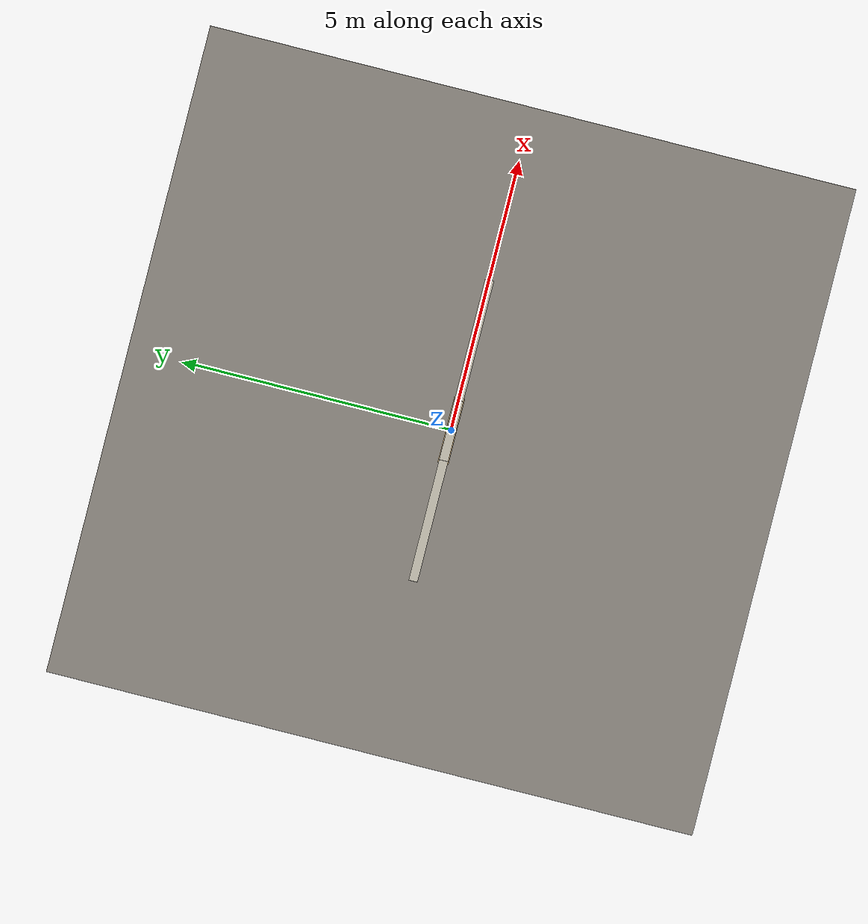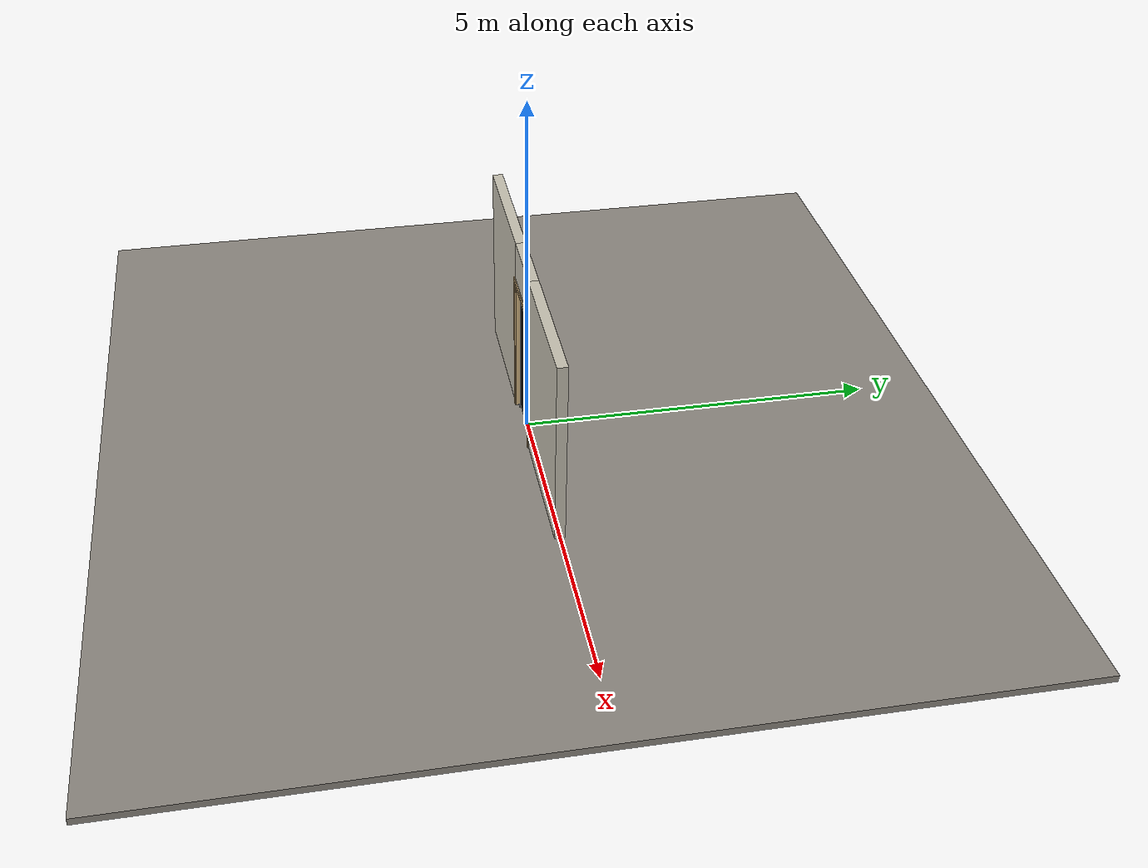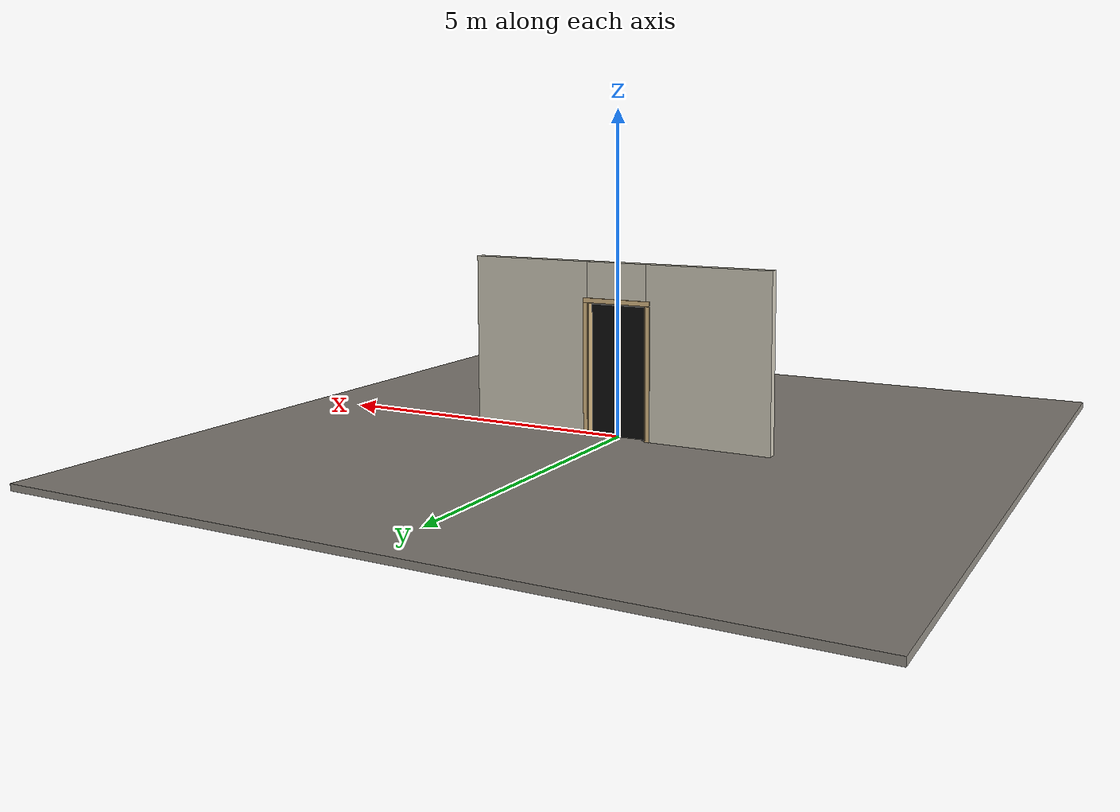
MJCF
<?xml version="1.0" ?>
<mujoco model="db0924_saloon_full">
  <compiler angle="radian" meshdir="../../hardware" texturedir="../../textures" autolimits="true" inertiafromgeom="false"/>
  <option timestep="0.002" integrator="implicitfast" cone="elliptic" impratio="10" noslip_iterations="3">
    <flag multiccd="enable"/>
  </option>
  <size memory="16M"/>
  <default>
    <geom condim="4" solref="0.005 1" solimp="0.95 0.99 0.001"/>
    <joint solreflimit="0.005 1" solimplimit="0.95 0.99 0.001"/>
    <tendon solreflimit="0.005 1"/>
    <equality solref="0.002 1"/>
  </default>
  <visual>
    <headlight ambient="0.4 0.4 0.4" diffuse="0.7 0.7 0.7" specular="0.2 0.2 0.2"/>
    <quality shadowsize="4096"/>
    <map znear="0.01" zfar="60"/>
  </visual>
  <asset>
    <material name="mat_floor" rgba="0.55 0.53 0.5 1" specular="0.2" shininess="0.15" reflectance="0"/>
    <material name="mat_wall" rgba="0.78 0.76 0.7 1" specular="0.2" shininess="0.1" reflectance="0"/>
    <material name="mat_frame" rgba="0.82 0.7 0.5 1" specular="0.2" shininess="0.45" reflectance="0"/>
    <material name="mat_leaf" rgba="0.04 0.04 0.04 1" specular="0.2" shininess="0.56" reflectance="0"/>
    <material name="mat_hinge" rgba="0.65 0.66 0.68 1" specular="0.74" shininess="0.5" reflectance="0.36"/>
    <texture name="skybox" type="skybox" builtin="gradient" rgb1="0.6 0.7 0.85" rgb2="0.9 0.92 0.95" width="256" height="256"/>
  </asset>
  <worldbody>
    <light name="sun" pos="1.5 -2.5 4" dir="-0.3 0.5 -0.8" directional="true" diffuse="0.8 0.8 0.8" specular="0.3 0.3 0.3" castshadow="true"/>
    <light name="fill" pos="-1.5 2.5 3" dir="0.3 -0.5 -0.7" directional="true" diffuse="0.35 0.35 0.4" castshadow="false"/>
    <camera name="robot_view" pos="0 -2.554375 1.744225" xyaxes="1 0 0 0 0.26963 0.962964" fovy="52"/>
    <camera name="far_view" pos="0 2.554375 1.744225" xyaxes="-1 0 0 0 -0.26963 0.962964" fovy="52"/>
    <camera name="iso" pos="1.941325 -2.145675 2.152925" xyaxes="0.741536 0.670913 0 -0.242917 0.268487 0.932151" fovy="46"/>
    <camera name="detail_handle" pos="0.48 -0.8 1.28" xyaxes="0.97561 0.219512 0 -0.070934 0.315262 0.94635" fovy="38"/>
    <geom name="floor" type="box" size="6 6 0.05" pos="0 0 -0.05" material="mat_floor" group="0" contype="1" conaffinity="1" friction="0.8 0.005 0.0001" density="2400"/>
    <geom name="wall_left" type="box" size="1.00075 0.0725 1.35" pos="-1.49925 0 1.35" material="mat_wall" group="0" contype="1" conaffinity="1" friction="0.6 0.005 0.0001" density="800"/>
    <geom name="wall_right" type="box" size="1.00075 0.0725 1.35" pos="1.49925 0 1.35" material="mat_wall" group="0" contype="1" conaffinity="1" friction="0.6 0.005 0.0001" density="800"/>
    <geom name="wall_header" type="box" size="0.4985 0.0725 0.3115" pos="0 0 2.3885" material="mat_wall" group="0" contype="1" conaffinity="1" friction="0.6 0.005 0.0001" density="800"/>
    <geom name="jamb_hinge" type="box" size="0.0095 0.0725 1.029" pos="-0.489 0 1.029" material="mat_frame" group="0" contype="1" conaffinity="1" friction="0.6 0.005 0.0001" density="400"/>
    <geom name="jamb_strike" type="box" size="0.0095 0.0725 1.029" pos="0.489 0 1.029" material="mat_frame" group="0" contype="1" conaffinity="1" friction="0.6 0.005 0.0001" density="400"/>
    <geom name="stud_strike" type="box" size="0.015 0.0725 1.029" pos="0.5135 0 1.029" material="mat_wall" group="0" contype="1" conaffinity="1" friction="0.6 0.005 0.0001" density="500"/>
    <geom name="jamb_head" type="box" size="0.5135 0.0725 0.0095" pos="0.015 0 2.0675" material="mat_frame" group="0" contype="1" conaffinity="1" friction="0.6 0.005 0.0001" density="400"/>
    <geom name="head_stud" type="box" size="0.5135 0.0725 0.015" pos="0.015 0 2.092" material="mat_wall" group="0" contype="1" conaffinity="1" friction="0.6 0.005 0.0001" density="500"/>
    <geom name="casing_l_n" type="box" size="0.035 0.008 1.0385" pos="-0.5285 -0.0805 1.029" material="mat_frame" group="2" contype="0" conaffinity="0" density="400"/>
    <geom name="casing_r_n" type="box" size="0.035 0.008 1.0385" pos="0.5285 -0.0805 1.029" material="mat_frame" group="2" contype="0" conaffinity="0" density="400"/>
    <geom name="casing_h_n" type="box" size="0.5635 0.008 0.035" pos="0 -0.0805 2.107" material="mat_frame" group="2" contype="0" conaffinity="0" density="400"/>
    <geom name="casing_l_p" type="box" size="0.035 0.008 1.0385" pos="-0.5285 0.0805 1.029" material="mat_frame" group="2" contype="0" conaffinity="0" density="400"/>
    <geom name="casing_r_p" type="box" size="0.035 0.008 1.0385" pos="0.5285 0.0805 1.029" material="mat_frame" group="2" contype="0" conaffinity="0" density="400"/>
    <geom name="casing_h_p" type="box" size="0.5635 0.008 0.035" pos="0 0.0805 2.107" material="mat_frame" group="2" contype="0" conaffinity="0" density="400"/>
    <geom name="pivot_bottom_socket" type="box" size="0.035 0.035 0.0115" pos="-0.456 0 0.0015" material="mat_hinge" group="1" contype="0" conaffinity="0" density="7850"/>
    <geom name="pivot_top_bracket" type="box" size="0.035 0.035 0.0025" pos="-0.456 0 2.0555" material="mat_hinge" group="1" contype="0" conaffinity="0" density="7850"/>
    <site name="approach_point" pos="0 -1.5 0" quat="1 0 0 0" size="0.05" rgba="0.2 0.9 0.2 0.5" group="4"/>
    <site name="goal_point" pos="0 1.5 0" quat="1 0 0 0" size="0.05" rgba="0.2 0.9 0.2 0.5" group="4"/>
    <site name="door_plane_center" pos="0 0 1.029" quat="1 0 0 0" size="0.02" rgba="0.2 0.9 0.2 0.5" group="4"/>
    <body name="leaf" pos="-0.4795 0 0">
      <inertial pos="0.472802 0 1.029999" mass="50.33575" quat="0.5 -0.5 0.5 0.5" diaginertia="3.413316389 17.345186372 20.748234168"/>
      <joint name="leaf_hinge" type="hinge" axis="0 0 1" pos="0.0235 0 0" limited="true" range="-1.570796 1.570796" damping="0.990538" frictionloss="4.300726" stiffness="4.4" springref="0" armature="0.02"/>
      <geom name="leaf_slab" type="box" size="0.45 0.0175 1.015" pos="0.4735 0 1.03" material="mat_leaf" group="0" contype="1" conaffinity="1" friction="0.35 0.005 0.0001" density="1"/>
      <geom name="pivot_bottom" type="cylinder" size="0.014 0.004" pos="0.0235 0 0.01" material="mat_hinge" group="1" contype="0" conaffinity="0" density="7850"/>
      <geom name="pivot_top" type="cylinder" size="0.014 0.004" pos="0.0235 0 2.049" material="mat_hinge" group="1" contype="0" conaffinity="0" density="7850"/>
      <site name="leaf_push_site" pos="0.6985 -0.0175 1.233" quat="1 0 0 0" size="0.015" rgba="0.2 0.9 0.2 0.5" group="4"/>
    </body>
  </worldbody>
  <sensor>
    <jointpos name="leaf_hinge_pos" joint="leaf_hinge"/>
    <jointvel name="leaf_hinge_vel" joint="leaf_hinge"/>
  </sensor>
</mujoco>
